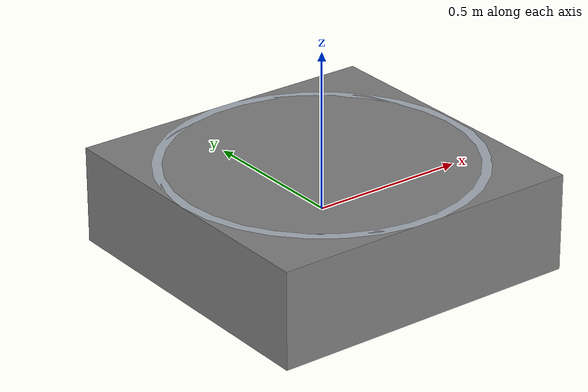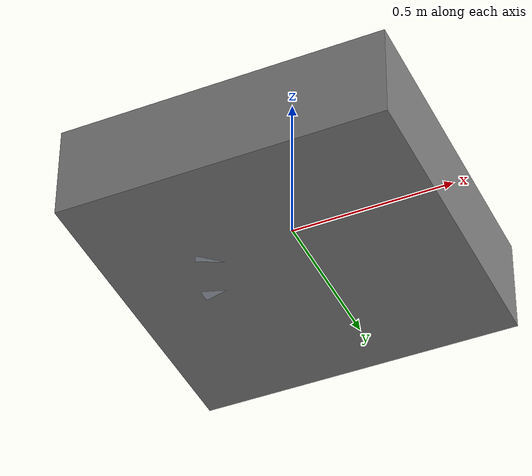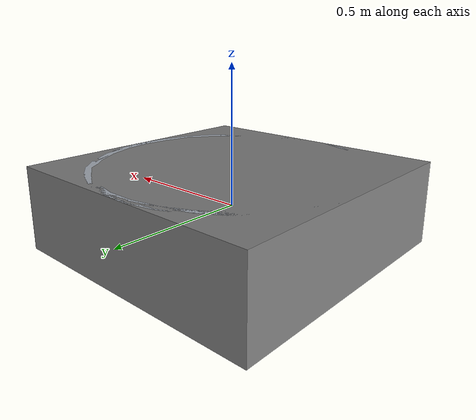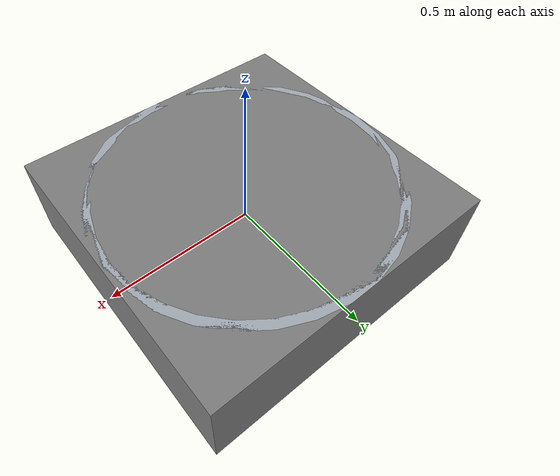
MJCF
<mujoco model="asset">
  <asset>
    <mesh name="bullet_plate_visual" file="bullet_plate.normalized.obj"/>
    <mesh name="bullet_plate_collision" file="bullet_plate.collision_box.obj"/>
  </asset>
  <worldbody><body name="bullet_plate">
    <geom type="mesh" mesh="bullet_plate_visual" contype="0" conaffinity="0" rgba="0.65 0.68 0.72 1"/>
    <geom type="mesh" mesh="bullet_plate_collision" density="1000"/>
  </body></worldbody>
</mujoco>
